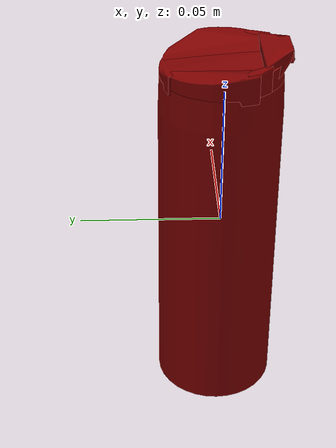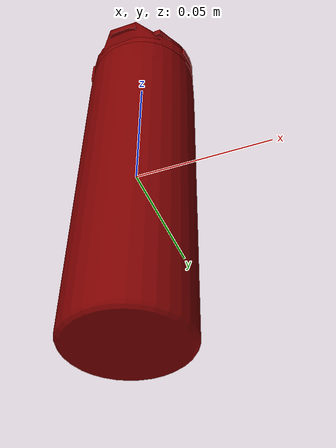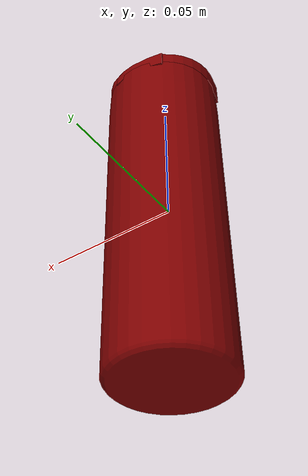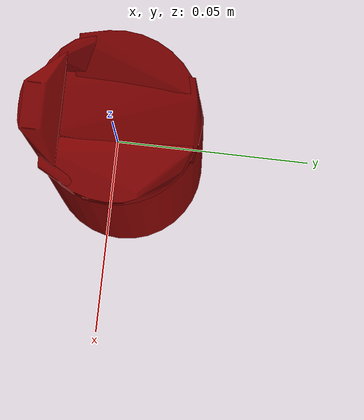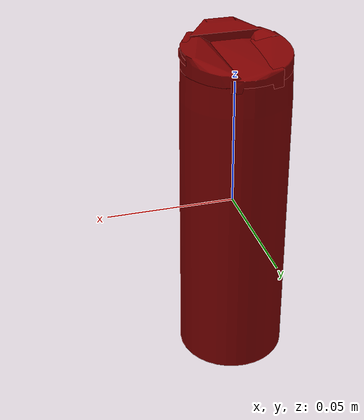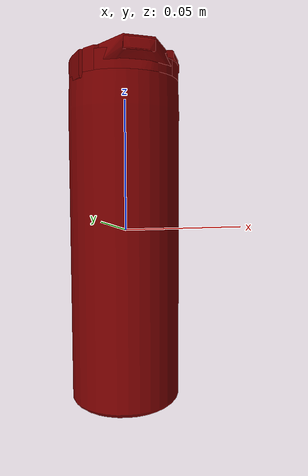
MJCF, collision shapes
<?xml version='1.0' encoding='utf-8'?>
<mujoco model="water_bottle_9">
  <asset>
    <mesh file="visual/model_normalized_0.obj" name="model_normalized_0_vis" scale="0.135 0.135 0.135" refquat="1.0 0.0 0.0 0.0" />
    <texture type="2d" name="image0" file="visual/image0.png" />
    <material name="spacex_water_bottle" texture="image0" specular="0.5" shininess="0.25" />
    <mesh file="collision/collision_mesh_collision_0.obj" name="water_collision_mesh_0" scale="0.135 0.135 0.135" refquat="1.0 0.0 0.0 0.0" />
    <mesh file="collision/collision_mesh_collision_1.obj" name="water_collision_mesh_1" scale="0.135 0.135 0.135" refquat="1.0 0.0 0.0 0.0" />
    <mesh file="collision/collision_mesh_collision_2.obj" name="water_collision_mesh_2" scale="0.135 0.135 0.135" refquat="1.0 0.0 0.0 0.0" />
    <mesh file="collision/collision_mesh_collision_3.obj" name="water_collision_mesh_3" scale="0.135 0.135 0.135" refquat="1.0 0.0 0.0 0.0" />
    <mesh file="collision/collision_mesh_collision_4.obj" name="water_collision_mesh_4" scale="0.135 0.135 0.135" refquat="1.0 0.0 0.0 0.0" />
    <mesh file="collision/collision_mesh_collision_5.obj" name="water_collision_mesh_5" scale="0.135 0.135 0.135" refquat="1.0 0.0 0.0 0.0" />
    <mesh file="collision/collision_mesh_collision_6.obj" name="water_collision_mesh_6" scale="0.135 0.135 0.135" refquat="1.0 0.0 0.0 0.0" />
    <mesh file="collision/collision_mesh_collision_7.obj" name="water_collision_mesh_7" scale="0.135 0.135 0.135" refquat="1.0 0.0 0.0 0.0" />
    <mesh file="collision/collision_mesh_collision_8.obj" name="water_collision_mesh_8" scale="0.135 0.135 0.135" refquat="1.0 0.0 0.0 0.0" />
    <mesh file="collision/collision_mesh_collision_9.obj" name="water_collision_mesh_9" scale="0.135 0.135 0.135" refquat="1.0 0.0 0.0 0.0" />
    </asset>
  <default>
    <default class="region">
      <geom group="1" conaffinity="0" contype="0" rgba="0 1 0 0" />
      </default>
    <default class="collision">
      <geom group="0" rgba="0.5 0 0 0.5" density="1000.0" />
      </default>
    </default>
  <worldbody>
    <body>
      <body name="object">
        <geom solimp="0.998 0.998 0.001" solref="0.001 1" density="100" friction="0.95 0.3 0.1" type="mesh" mesh="model_normalized_0_vis" conaffinity="0" contype="0" group="1" material="spacex_water_bottle" />
        <geom class="region" name="reg_bbox" type="box" pos="0.00024458017499999956 0.00021965579999999853 -0.0001501935750000058" size="0.0208967553 0.022056174450000004 0.06734980642499999" />
        <geom mesh="water_collision_mesh_0" type="mesh" class="collision" />
        <geom mesh="water_collision_mesh_1" type="mesh" class="collision" />
        <geom mesh="water_collision_mesh_2" type="mesh" class="collision" />
        <geom mesh="water_collision_mesh_3" type="mesh" class="collision" />
        <geom mesh="water_collision_mesh_4" type="mesh" class="collision" />
        <geom mesh="water_collision_mesh_5" type="mesh" class="collision" />
        <geom mesh="water_collision_mesh_6" type="mesh" class="collision" />
        <geom mesh="water_collision_mesh_7" type="mesh" class="collision" />
        <geom mesh="water_collision_mesh_8" type="mesh" class="collision" />
        <geom mesh="water_collision_mesh_9" type="mesh" class="collision" />
        </body>
      </body>
    </worldbody>
  </mujoco>
